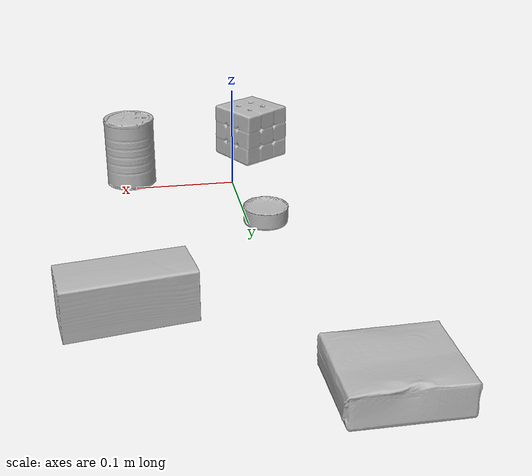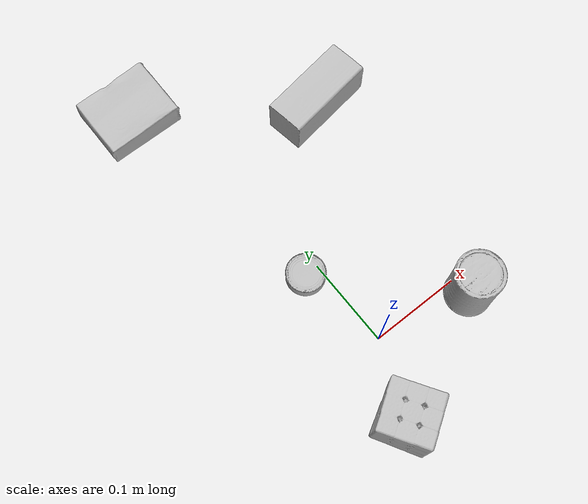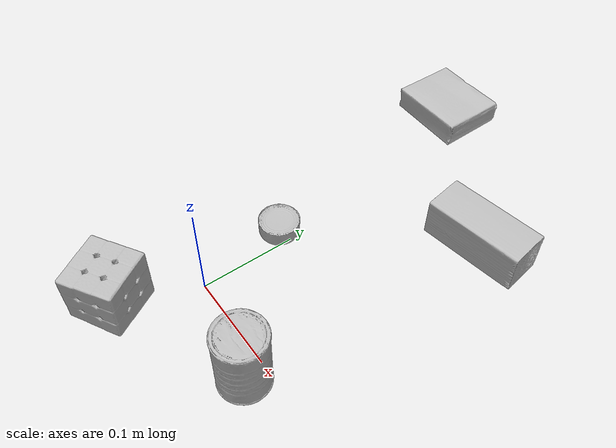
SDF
<sdf version="1.4">
  <world name="default">
    <light name="light1" type="point">
      <pose>0 0 1 0 0 0</pose>
      <diffuse>3 3 3 1</diffuse>
      <specular>3 3 3 1</specular>
    </light>
    <light name="light2" type="point">
      <pose>0 0.5 2 0 0 0</pose>
      <diffuse>1 1 1 1</diffuse>
      <specular>1 1 1 1</specular>
    </light>
    <light name="light3" type="point">
      <pose>0 0.5 2 0 0 0</pose>
      <diffuse>3 3 3 1</diffuse>
      <specular>3 3 3 1</specular>
    </light>
    <scene>
      <ambient>0.7 0.7 0.7</ambient>
    </scene>
    <model name="box1">
      <link name="link_box1">
        <collision name="default">
          <geometry>
            <mesh>
              <uri>model://rubiks_cube/collision_meshes/collision.obj</uri>
              <scale>1.0 1.0 1.0</scale>
            </mesh>
          </geometry>
          <surface>
            <friction>
              <ode>
                <mu>0.5</mu>
                <mu2>0.5</mu2>
              </ode>
            </friction>
          <contact>
        <ode>
            <max_vel>0</max_vel>
            <min_depth>0.0001</min_depth>
            <kp>1e8</kp>
        </ode>
    </contact></surface>
        </collision>
        <visual name="default">
          <geometry>
            <mesh>
              <uri>model://rubiks_cube/visual_meshes/visual.dae</uri>
              <scale>1.0 1.0 1.0</scale>
            </mesh>
          </geometry>
        </visual>
        <inertial>
          <mass>0.1675702929496765</mass>
          <pose>2.6721041649580002e-05 5.2569666877388954e-05 -7.264316082000732e-06 -0.054672410780645164 -0.09813946178663992 -0.034457105846518836</pose>
          <inertia>
            <ixx>9.259384e-05</ixx>
            <iyy>9.2162045e-05</iyy>
            <izz>9.336113e-05</izz>
            <ixy>0</ixy>
            <ixz>0</ixz>
            <iyz>0</iyz>
          </inertia>
        </inertial>
      </link>
      <pose>-0.03301463648676872 -0.07965538650751114 0.028678975999355316 -3.2097367826075346e-06 -1.313639973652919e-06 0.5586188431607286</pose>
    </model>
    <model name="box2">
      <link name="link_box2">
        <collision name="default">
          <geometry>
            <mesh>
              <uri>model://wood_block/collision_meshes/collision.obj</uri>
              <scale>0.5 0.5 0.5</scale>
            </mesh>
          </geometry>
          <surface>
            <friction>
              <ode>
                <mu>0.5</mu>
                <mu2>0.5</mu2>
              </ode>
            </friction>
          <contact>
        <ode>
            <max_vel>0</max_vel>
            <min_depth>0.0001</min_depth>
            <kp>1e8</kp>
        </ode>
    </contact></surface>
        </collision>
        <visual name="default">
          <geometry>
            <mesh>
              <uri>model://wood_block/visual_meshes/visual.dae</uri>
              <scale>0.5 0.5 0.5</scale>
            </mesh>
          </geometry>
        </visual>
        <inertial>
          <mass>0.20594346523284912</mass>
          <pose>-2.9066577553749084e-06 -0.000285404734313488 0.00013204291462898254 -0.05220975528833662 -0.005192695571830849 -0.0068613788586691015</pose>
          <inertia>
            <ixx>6.8895875e-05</ixx>
            <iyy>0.0002176421</iyy>
            <izz>0.00021682802</izz>
            <ixy>0</ixy>
            <ixz>0</ixz>
            <iyz>0</iyz>
          </inertia>
        </inertial>
      </link>
      <pose>0.11757879704236984 0.24714644253253937 0.02262926660478115 -0.0052085617310164405 0.005718758320632699 0.15281372915722485</pose>
    </model>
    <model name="box3">
      <link name="link_box3">
        <collision name="default">
          <geometry>
            <mesh>
              <uri>model://gelatin_box/collision_meshes/collision.obj</uri>
              <scale>1.0 1.0 1.0</scale>
            </mesh>
          </geometry>
          <surface>
            <friction>
              <ode>
                <mu>0.5</mu>
                <mu2>0.5</mu2>
              </ode>
            </friction>
          <contact>
        <ode>
            <max_vel>0</max_vel>
            <min_depth>0.0001</min_depth>
            <kp>1e8</kp>
        </ode>
    </contact></surface>
        </collision>
        <visual name="default">
          <geometry>
            <mesh>
              <uri>model://gelatin_box/visual_meshes/visual.dae</uri>
              <scale>1.0 1.0 1.0</scale>
            </mesh>
          </geometry>
        </visual>
        <inertial>
          <mass>0.27371785044670105</mass>
          <pose>0.0004319618456065655 0.00011156871914863586 -0.0003640321083366871 -0.0010503717367230932 -0.004755817294347581 0.01644056133308036</pose>
          <inertia>
            <ixx>0.00019322247</ixx>
            <iyy>0.00013801781</iyy>
            <izz>0.00029412765</izz>
            <ixy>0</ixy>
            <ixz>0</ixz>
            <iyz>0</iyz>
          </inertia>
        </inertial>
      </link>
      <pose>-0.052484914660453796 0.36310482025146484 0.015168312937021255 0.0055974462164206295 -0.007304494762383171 1.5624866435689568</pose>
    </model>
    <model name="can1">
      <link name="link_can1">
        <collision name="default">
          <geometry>
            <mesh>
              <uri>model://master_chef_can/collision_meshes/collision.obj</uri>
              <scale>0.5 0.5 0.5</scale>
            </mesh>
          </geometry>
          <surface>
            <friction>
              <ode>
                <mu>0.5</mu>
                <mu2>0.5</mu2>
              </ode>
            </friction>
          <contact>
        <ode>
            <max_vel>0</max_vel>
            <min_depth>0.0001</min_depth>
            <kp>1e8</kp>
        </ode>
    </contact></surface>
        </collision>
        <visual name="default">
          <geometry>
            <mesh>
              <uri>model://master_chef_can/visual_meshes/visual.dae</uri>
              <scale>0.5 0.5 0.5</scale>
            </mesh>
          </geometry>
        </visual>
        <inertial>
          <mass>0.18439537286758423</mass>
          <pose>-4.6619643399026245e-05 1.3926847941547749e-07 -5.080040136817843e-05 -0.0017995053130472594 0.0006479450382529565 -0.6102509153361354</pose>
          <inertia>
            <ixx>0.00010822757</ixx>
            <iyy>0.00010743104</iyy>
            <izz>5.9804017e-05</izz>
            <ixy>0</ixy>
            <ixz>0</ixz>
            <iyz>0</iyz>
          </inertia>
        </inertial>
      </link>
      <pose>0.10430002957582474 -0.020419344305992126 0.035301998257637024 -1.4636022359315275e-06 -7.212025543505024e-07 -2.6164618292687813</pose>
    </model>
    <model name="can2">
      <link name="link_can2">
        <collision name="default">
          <geometry>
            <mesh>
              <uri>model://tuna_fish_can/collision_meshes/collision.obj</uri>
              <scale>0.5 0.5 0.5</scale>
            </mesh>
          </geometry>
          <surface>
            <friction>
              <ode>
                <mu>0.5</mu>
                <mu2>0.5</mu2>
              </ode>
            </friction>
          <contact>
        <ode>
            <max_vel>0</max_vel>
            <min_depth>0.0001</min_depth>
            <kp>1e8</kp>
        </ode>
    </contact></surface>
        </collision>
        <visual name="default">
          <geometry>
            <mesh>
              <uri>model://tuna_fish_can/visual_meshes/visual.dae</uri>
              <scale>0.5 0.5 0.5</scale>
            </mesh>
          </geometry>
        </visual>
        <inertial>
          <mass>0.02825223281979561</mass>
          <pose>-2.0362142095109448e-05 -7.256046956172213e-06 -0.0005269023240543902 -0.0017944745775900258 0.00017164550693472895 0.24055441971144348</pose>
          <inertia>
            <ixx>3.819744e-06</ixx>
            <iyy>3.803824e-06</iyy>
            <izz>6.536128e-06</izz>
            <ixy>0</ixy>
            <ixz>0</ixz>
            <iyz>0</iyz>
          </inertia>
        </inertial>
      </link>
      <pose>-0.017010845243930817 0.09809400886297226 0.00851999968290329 -1.556273289406818e-08 -2.2379984482898862e-09 0.9366911882190843</pose>
    </model>
  <physics type="ode">
      <max_contacts>50</max_contacts>
      <ode>
        <solver>
          <type>quick</type>
          <iters>75</iters>
        </solver>
        <constraints>
          <contact_max_correcting_vel>0</contact_max_correcting_vel>
          <contact_surface_layer>0</contact_surface_layer>
        </constraints>
      </ode>
    </physics></world>
</sdf>
